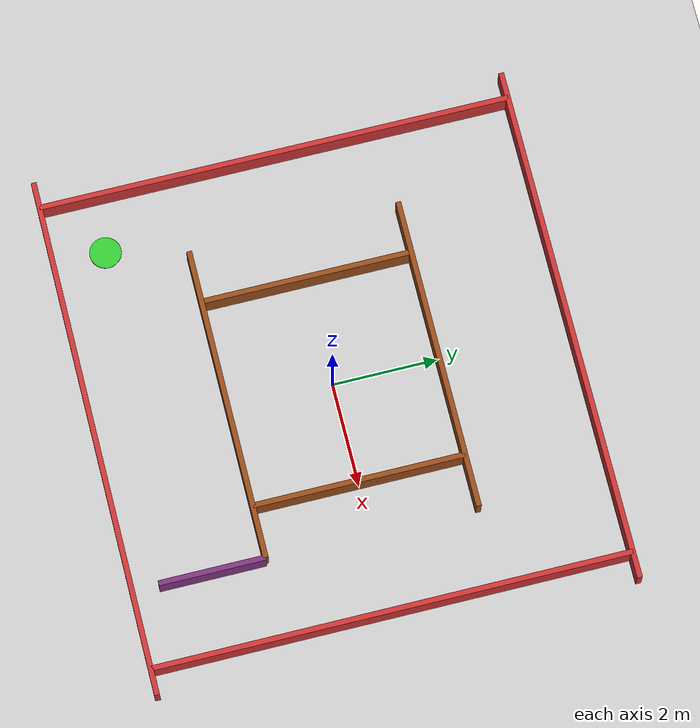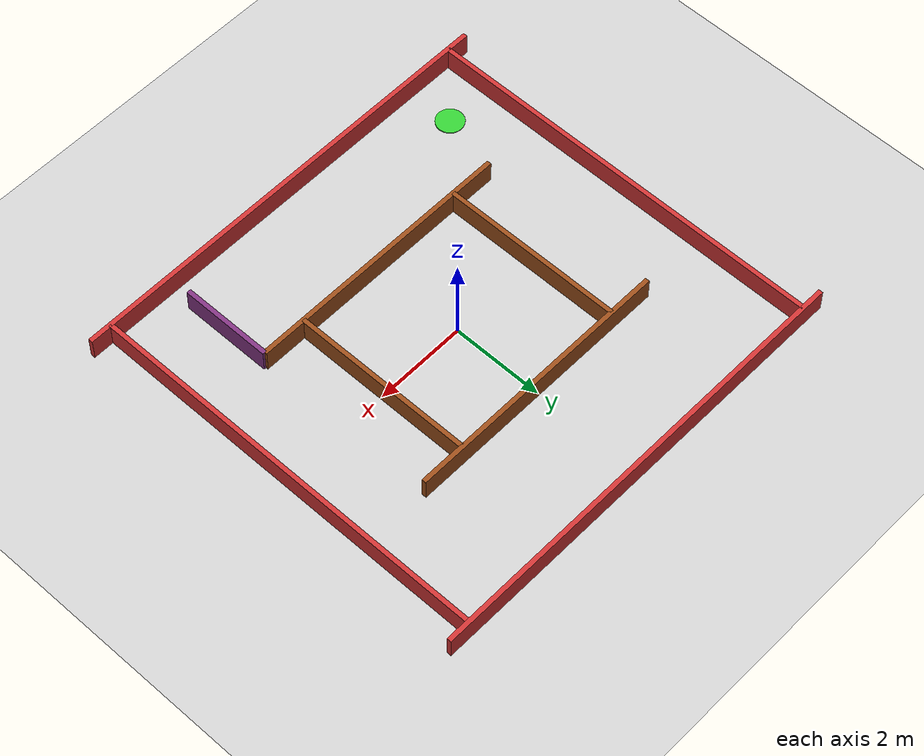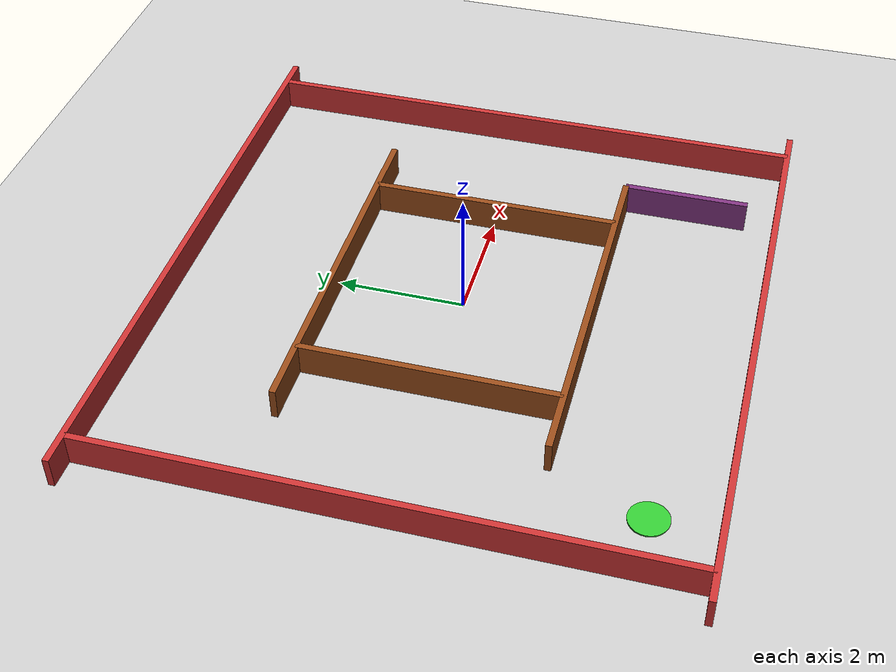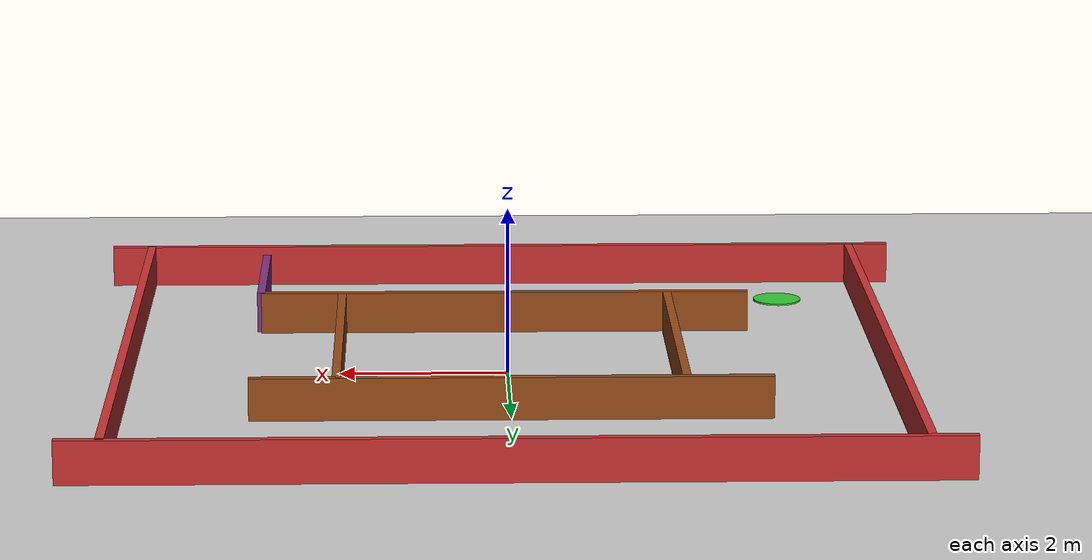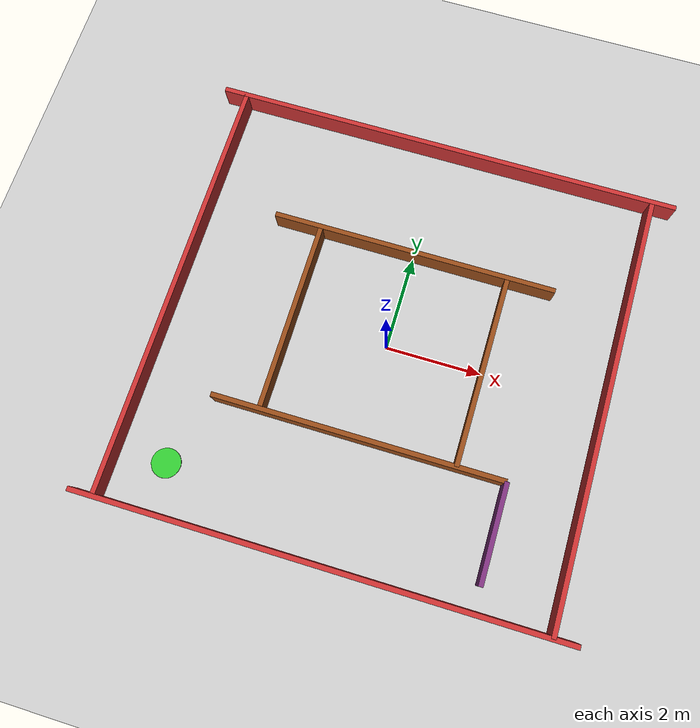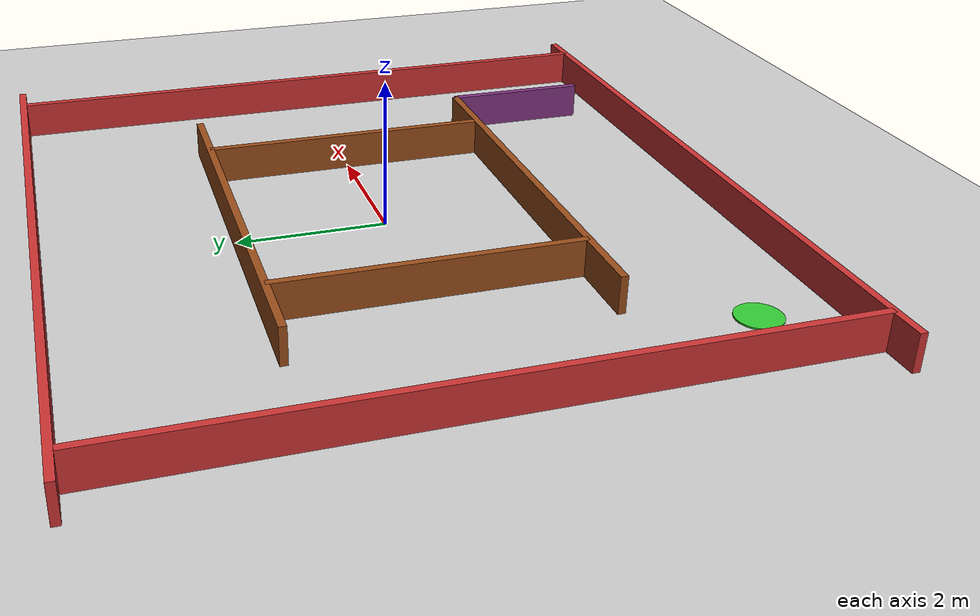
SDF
<!-- lr_turtlebot_sim/worlds/maze2.world -->
<?xml version="1.0"?>
<sdf version="1.6">
  <world name="maze2">
    <include>
      <uri>model://sun</uri>
    </include>

    <include>
      <uri>model://ground_plane</uri>
    </include>

    <!-- Maze 2: "The Middle School Maze" - Grid-like -->

    <!-- Outer walls -->
    <model name="outer_north">
      <pose>0 4.5 0.25 0 0 0</pose>
      <static>true</static>
      <link name="link">
        <collision name="collision">
          <geometry><box><size>10 0.1 0.5</size></box></geometry>
        </collision>
        <visual name="visual">
          <geometry><box><size>10 0.1 0.5</size></box></geometry>
          <material><ambient>0.8 0.2 0.2 1</ambient></material>
        </visual>
      </link>
    </model>

    <model name="outer_south">
      <pose>0 -4.5 0.25 0 0 0</pose>
      <static>true</static>
      <link name="link">
        <collision name="collision">
          <geometry><box><size>10 0.1 0.5</size></box></geometry>
        </collision>
        <visual name="visual">
          <geometry><box><size>10 0.1 0.5</size></box></geometry>
          <material><ambient>0.8 0.2 0.2 1</ambient></material>
        </visual>
      </link>
    </model>

    <model name="outer_east">
      <pose>4.5 0 0.25 0 0 1.5708</pose>
      <static>true</static>
      <link name="link">
        <collision name="collision">
          <geometry><box><size>9 0.1 0.5</size></box></geometry>
        </collision>
        <visual name="visual">
          <geometry><box><size>9 0.1 0.5</size></box></geometry>
          <material><ambient>0.8 0.2 0.2 1</ambient></material>
        </visual>
      </link>
    </model>

    <model name="outer_west">
      <pose>-4.5 0 0.25 0 0 1.5708</pose>
      <static>true</static>
      <link name="link">
        <collision name="collision">
          <geometry><box><size>9 0.1 0.5</size></box></geometry>
        </collision>
        <visual name="visual">
          <geometry><box><size>9 0.1 0.5</size></box></geometry>
          <material><ambient>0.8 0.2 0.2 1</ambient></material>
        </visual>
      </link>
    </model>

    <!-- Grid walls -->
    <model name="grid_1">
      <pose>0 2 0.25 0 0 0</pose>
      <static>true</static>
      <link name="link">
        <collision name="collision">
          <geometry><box><size>6 0.1 0.5</size></box></geometry>
        </collision>
        <visual name="visual">
          <geometry><box><size>6 0.1 0.5</size></box></geometry>
          <material><ambient>0.6 0.3 0.1 1</ambient></material>
        </visual>
      </link>
    </model>

    <model name="grid_2">
      <pose>0 -2 0.25 0 0 0</pose>
      <static>true</static>
      <link name="link">
        <collision name="collision">
          <geometry><box><size>6 0.1 0.5</size></box></geometry>
        </collision>
        <visual name="visual">
          <geometry><box><size>6 0.1 0.5</size></box></geometry>
          <material><ambient>0.6 0.3 0.1 1</ambient></material>
        </visual>
      </link>
    </model>

    <model name="grid_3">
      <pose>2 0 0.25 0 0 1.5708</pose>
      <static>true</static>
      <link name="link">
        <collision name="collision">
          <geometry><box><size>4 0.1 0.5</size></box></geometry>
        </collision>
        <visual name="visual">
          <geometry><box><size>4 0.1 0.5</size></box></geometry>
          <material><ambient>0.6 0.3 0.1 1</ambient></material>
        </visual>
      </link>
    </model>

    <model name="grid_4">
      <pose>-2 0 0.25 0 0 1.5708</pose>
      <static>true</static>
      <link name="link">
        <collision name="collision">
          <geometry><box><size>4 0.1 0.5</size></box></geometry>
        </collision>
        <visual name="visual">
          <geometry><box><size>4 0.1 0.5</size></box></geometry>
          <material><ambient>0.6 0.3 0.1 1</ambient></material>
        </visual>
      </link>
    </model>

    <!-- Dead end -->
    <model name="dead_end">
      <pose>3 -3 0.25 0 0 1.5708</pose>
      <static>true</static>
      <link name="link">
        <collision name="collision">
          <geometry><box><size>2 0.1 0.5</size></box></geometry>
        </collision>
        <visual name="visual">
          <geometry><box><size>2 0.1 0.5</size></box></geometry>
          <material><ambient>0.5 0.2 0.5 1</ambient></material>
        </visual>
      </link>
    </model>

    <!-- Goal -->
    <model name="goal">
      <pose>-3.5 -3.5 0.01 0 0 0</pose>
      <static>true</static>
      <link name="link">
        <visual name="visual">
          <geometry><cylinder><radius>0.3</radius><length>0.02</length></cylinder></geometry>
          <material><ambient>0.2 0.8 0.2 1</ambient></material>
        </visual>
      </link>
    </model>
  </world>
</sdf>
